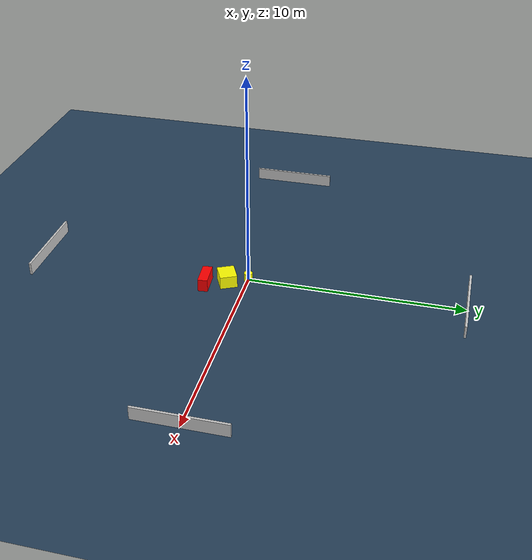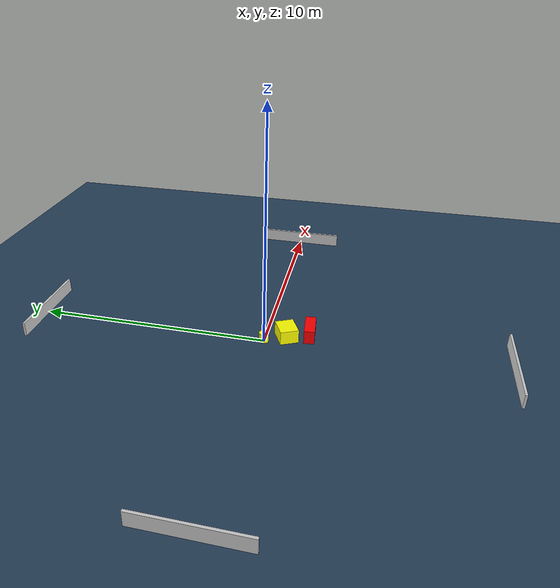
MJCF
<?xml version="1.0" ?>
<mujoco model="generated_environment">
  <option timestep="0.01" integrator="RK4" cone="elliptic"/>
  <default>
    <geom density="1"/>
  </default>
  <asset>
    <texture builtin="gradient" height="3072" name="skybox" rgb1="0.3 0.5 0.7" rgb2="0 0 0" type="skybox" width="512"/>
    <texture builtin="checker" height="300" name="groundplane" rgb1="0.2 0.3 0.4" rgb2="0.1 0.2 0.3" type="2d" width="300"/>
    <material name="groundplane" reflectance="0.2" texrepeat="5 5" texture="groundplane"/>
  </asset>
  <worldbody>
    <light dir="0 0 -1" directional="true" pos="0 0 1.5"/>
    <geom condim="3" friction="0.5 0.005 0.001" material="groundplane" name="floor" pos="0 0 0" size="0 0 0.05" type="plane"/>
    <body name="walls">
      <geom name="wall_1" condim="4" pos="-10.0 0.0 0.3" rgba="0.800000011920929 0.800000011920929 0.800000011920929 1.0" size="0.05 2.0 0.3" type="box"/>
      <geom name="wall_2" condim="4" pos="10.0 0.0 0.3" rgba="0.800000011920929 0.800000011920929 0.800000011920929 1.0" size="0.05 2.0 0.3" type="box"/>
      <geom name="wall_3" condim="4" pos="0.0 -10.0 0.3" rgba="0.800000011920929 0.800000011920929 0.800000011920929 1.0" size="2.0 0.05 0.3" type="box"/>
      <geom name="wall_4" condim="4" pos="0.0 10.0 0.3" rgba="0.800000011920929 0.800000011920929 0.800000011920929 1.0" size="2.0 0.05 0.3" type="box"/>
    </body>
    <body name="robot">
      <joint name="joint_x" type="slide" pos="0 0 0" axis="1 0 0"/>
      <joint name="joint_y" type="slide" pos="0 0 0" axis="0 1 0"/>
      <geom name="robot" type="cylinder" pos="0.0 0.0 0.2" size="0.2 0.2 0.0" mass="5.0" friction="1.0 0.005 0.0001" condim="4" rgba="1.0 1.0 0.0 1.0"/>
    </body>
    <body name="obstacle_1_movable">
      <geom name="obstacle_1_movable" condim="4" pos="0.43629147720414574 -0.8945591956498375 0.3" euler="0 0 206.0571761538896" friction="0.0 0.005 0.001" rgba="1.0 1.0 0.0 1.0" size="0.4514607642050942 0.39677721230222696 0.3" type="box" mass="0.1"/>
      <joint type="free"/>
    </body>
    <body name="obstacle_2_static">
      <geom name="obstacle_2_static" condim="4" pos="0.7926854172296677 -1.8345588818906464 0.3" euler="0 0 4.771949197741487" friction="0.0 0.005 0.001" rgba="1.0 0.0 0.0 1.0" size="0.5864617122098378 0.2254222587032836 0.3" type="box"/>
    </body>
  </worldbody>
  <actuator>
    <motor name="actuator_x" joint="joint_x" gear="1" ctrlrange="-1 1"/>
    <motor name="actuator_y" joint="joint_y" gear="1" ctrlrange="-1 1"/>
  </actuator>
</mujoco>
